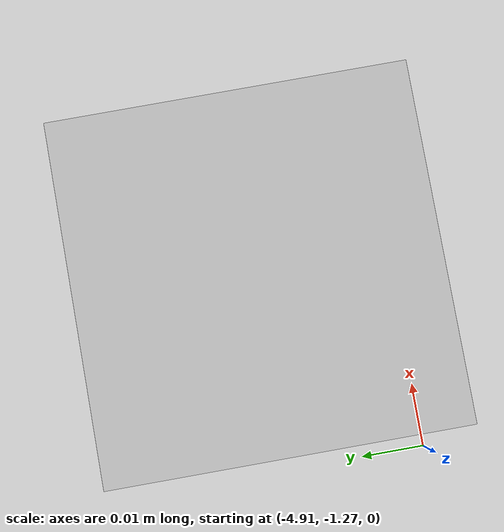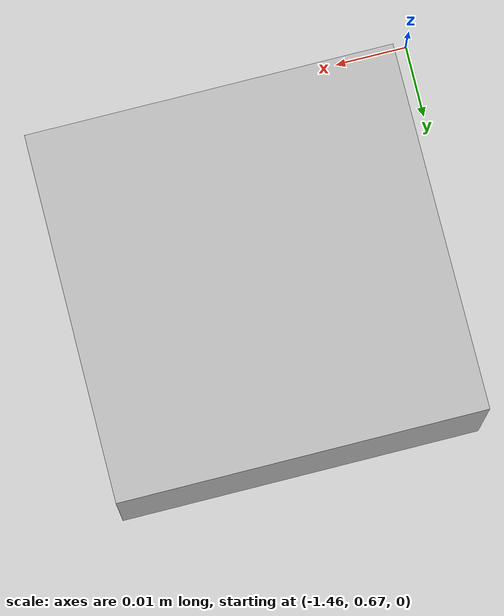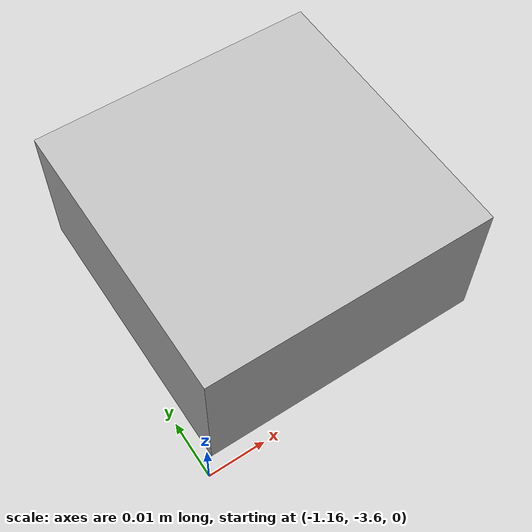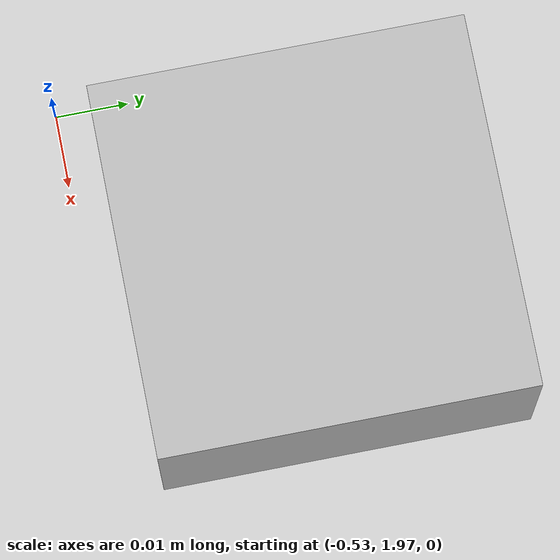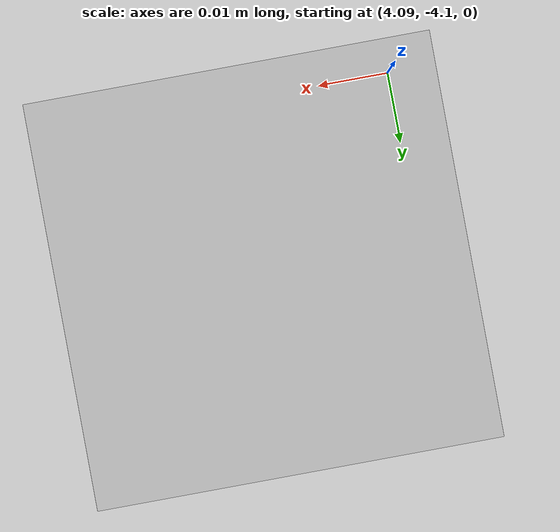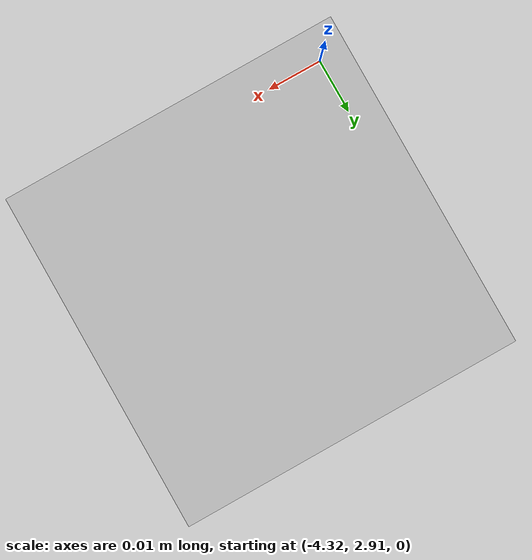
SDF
<sdf version="1.4">
 <world name="default">
  <model name="ground_plane">
   <static>1</static>
   <link name="link">
    <collision name="collision">
     <geometry><plane><normal>0 0 1</normal><size>100 100</size></plane></geometry>
     <surface><friction><ode><mu>100</mu><mu2>50</mu2></ode></friction></surface>
    </collision>
    <visual name="visual">
     <cast_shadows>0</cast_shadows>
     <geometry><plane><normal>0 0 1</normal><size>100 100</size></plane></geometry>
     <material>
      <script><uri>file://media/materials/scripts/gazebo.material</uri><name>Gazebo/Grey</name></script>
     </material>
    </visual>
    <velocity_decay><linear>0</linear><angular>0</angular></velocity_decay>
   </link>
  </model>
  <light name="sun" type="directional">
   <pose>0 0 10 0 -0 0</pose>
   <diffuse>0.8 0.8 0.8 1</diffuse>
   <specular>0.2 0.2 0.2 1</specular>
   <attenuation>
    <range>1000</range>
    <constant>0.9</constant>
    <linear>0.01</linear>
    <quadratic>0.001</quadratic>
   </attenuation>
   <direction>-0.5 0.1 -0.9</direction>
  </light>
  <plugin name="SetupWorld" filename="libgazebo_plugins.so"/>
  <physics type="ode">
   <max_step_size>0.001</max_step_size>
   <real_time_factor>1</real_time_factor>
   <real_time_update_rate>1000</real_time_update_rate>
   <gravity>0 0 -9.8</gravity>
  </physics>
  <scene><ambient>0.4 0.4 0.4 1</ambient><background>0.7 0.7 0.7 1</background><shadows>1</shadows></scene>
  <spherical_coordinates>
   <surface_model>EARTH_WGS84</surface_model>
   <latitude_deg>0</latitude_deg>
   <longitude_deg>0</longitude_deg>
   <elevation>0</elevation>
   <heading_deg>0</heading_deg>
  </spherical_coordinates>
  <model name="at0_1">
   <static>0</static>
   <link name="link">
    <inertial>
     <mass>0.1</mass>
     <inertia><ixx>4e-05</ixx><ixy>0</ixy><ixz>0</ixz><iyy>4e-05</iyy><iyz>0</iyz><izz>4e-05</izz></inertia>
    </inertial>
    <visual name="visual">
     <transparency>0.1</transparency>
     <geometry><box><size>0.05 0.05 0.05</size></box></geometry>
     <material>
      <script>
       <uri>model://at0/materials/scripts</uri>
       <uri>model://at0/materials/textures</uri>
       <name>at0/Diffuse</name>
      </script>
     </material>
    </visual>
    <collision name="collision">
     <pose>0 0 -0.0125 0 -0 0</pose>
     <geometry><box><size>0.05 0.05 0.05</size></box></geometry>
     <surface><friction><ode><mu>0.8</mu><mu2>0.7</mu2></ode></friction></surface>
    </collision>
    <velocity_decay><linear>0</linear><angular>0</angular></velocity_decay>
   </link>
   <pose>-1.4311 0.699185 -2e-06 1.8e-05 6.3e-05 1.2e-05</pose>
  </model>
  <model name="at0_3">
   <static>0</static>
   <link name="link">
    <inertial>
     <mass>0.1</mass>
     <inertia><ixx>4e-05</ixx><ixy>0</ixy><ixz>0</ixz><iyy>4e-05</iyy><iyz>0</iyz><izz>4e-05</izz></inertia>
    </inertial>
    <visual name="visual">
     <transparency>0.1</transparency>
     <geometry><box><size>0.05 0.05 0.05</size></box></geometry>
     <material>
      <script>
       <uri>model://at0/materials/scripts</uri>
       <uri>model://at0/materials/textures</uri>
       <name>at0/Diffuse</name>
      </script>
     </material>
    </visual>
    <collision name="collision">
     <pose>0 0 0 -0 0</pose>
     <geometry><box><size>0.05 0.05 0.05</size></box></geometry>
     <surface><friction><ode><mu>0.8</mu><mu2>0.7</mu2></ode></friction></surface>
    </collision>
    <velocity_decay><linear>0</linear><angular>0</angular></velocity_decay>
   </link>
   <pose>-1.50091 3.35763 -8e-06 -6.1e-05 1e-05 1e-05</pose>
  </model>
  <model name="at0_6">
   <static>0</static>
   <link name="link">
    <inertial>
     <mass>0.1</mass>
     <inertia><ixx>4e-05</ixx><ixy>0</ixy><ixz>0</ixz><iyy>4e-05</iyy><iyz>0</iyz><izz>4e-05</izz></inertia>
    </inertial>
    <visual name="visual">
     <transparency>0.1</transparency>
     <geometry><box><size>0.05 0.05 0.05</size></box></geometry>
     <material>
      <script>
       <uri>model://at0/materials/scripts</uri>
       <uri>model://at0/materials/textures</uri>
       <name>at0/Diffuse</name>
      </script>
     </material>
    </visual>
    <collision name="collision">
     <geometry><box><size>0.05 0.05 0.05</size></box></geometry>
     <surface><friction><ode><mu>0.8</mu><mu2>0.7</mu2></ode></friction></surface>
    </collision>
    <velocity_decay><linear>0</linear><angular>0</angular></velocity_decay>
   </link>
   <pose>-3.42375 1.11176 -0 0 -0 9e-06</pose>
  </model>
  <model name="at0_7">
   <static>0</static>
   <link name="link">
    <inertial>
     <mass>0.1</mass>
     <inertia><ixx>4e-05</ixx><ixy>0</ixy><ixz>0</ixz><iyy>4e-05</iyy><iyz>0</iyz><izz>4e-05</izz></inertia>
    </inertial>
    <visual name="visual">
     <transparency>0.1</transparency>
     <geometry><box><size>0.05 0.05 0.05</size></box></geometry>
     <material>
      <script>
       <uri>model://at0/materials/scripts</uri>
       <uri>model://at0/materials/textures</uri>
       <name>at0/Diffuse</name>
      </script>
     </material>
    </visual>
    <collision name="collision">
     <geometry><box><size>0.05 0.05 0.05</size></box></geometry>
     <surface><friction><ode><mu>0.8</mu><mu2>0.7</mu2></ode></friction></surface>
    </collision>
    <velocity_decay><linear>0</linear><angular>0</angular></velocity_decay>
   </link>
   <pose>3.87806 -1.02691 -2e-06 6.1e-05 -1e-05 1e-05</pose>
  </model>
  <model name="at0_8">
   <static>0</static>
   <link name="link">
    <inertial>
     <mass>0.1</mass>
     <inertia><ixx>4e-05</ixx><ixy>0</ixy><ixz>0</ixz><iyy>4e-05</iyy><iyz>0</iyz><izz>4e-05</izz></inertia>
    </inertial>
    <visual name="visual">
     <transparency>0.1</transparency>
     <geometry><box><size>0.05 0.05 0.05</size></box></geometry>
     <material>
      <script>
       <uri>model://at0/materials/scripts</uri>
       <uri>model://at0/materials/textures</uri>
       <name>at0/Diffuse</name>
      </script>
     </material>
    </visual>
    <collision name="collision">
     <geometry><box><size>0.05 0.05 0.05</size></box></geometry>
     <surface><friction><ode><mu>0.8</mu><mu2>0.7</mu2></ode></friction></surface>
    </collision>
    <velocity_decay><linear>0</linear><angular>0</angular></velocity_decay>
   </link>
   <pose>-1.13303 -3.57246 -2e-06 6.1e-05 -1e-05 1e-05</pose>
  </model>
  <model name="at0_10">
   <static>0</static>
   <link name="link">
    <inertial>
     <mass>0.1</mass>
     <inertia><ixx>4e-05</ixx><ixy>0</ixy><ixz>0</ixz><iyy>4e-05</iyy><iyz>0</iyz><izz>4e-05</izz></inertia>
    </inertial>
    <visual name="visual">
     <transparency>0.1</transparency>
     <geometry><box><size>0.05 0.05 0.05</size></box></geometry>
     <material>
      <script>
       <uri>model://at0/materials/scripts</uri>
       <uri>model://at0/materials/textures</uri>
       <name>at0/Diffuse</name>
      </script>
     </material>
    </visual>
    <collision name="collision">
     <geometry><box><size>0.05 0.05 0.05</size></box></geometry>
     <surface><friction><ode><mu>0.8</mu><mu2>0.7</mu2></ode></friction></surface>
    </collision>
    <velocity_decay><linear>0</linear><angular>0</angular></velocity_decay>
   </link>
   <pose>-4.29334 2.9364 -2e-06 6.1e-05 -1e-05 1e-05</pose>
  </model>
  <model name="at0_11">
   <static>0</static>
   <link name="link">
    <inertial>
     <mass>0.1</mass>
     <inertia><ixx>4e-05</ixx><ixy>0</ixy><ixz>0</ixz><iyy>4e-05</iyy><iyz>0</iyz><izz>4e-05</izz></inertia>
    </inertial>
    <visual name="visual">
     <transparency>0.1</transparency>
     <geometry><box><size>0.05 0.05 0.05</size></box></geometry>
     <material>
      <script>
       <uri>model://at0/materials/scripts</uri>
       <uri>model://at0/materials/textures</uri>
       <name>at0/Diffuse</name>
      </script>
     </material>
    </visual>
    <collision name="collision">
     <geometry><box><size>0.05 0.05 0.05</size></box></geometry>
     <surface><friction><ode><mu>0.8</mu><mu2>0.7</mu2></ode></friction></surface>
    </collision>
    <velocity_decay><linear>0</linear><angular>0</angular></velocity_decay>
   </link>
   <pose>-0.501759 2 -8e-06 -6.1e-05 1e-05 1e-05</pose>
  </model>
  <model name="at0_16">
   <static>0</static>
   <link name="link">
    <inertial>
     <mass>0.1</mass>
     <inertia><ixx>4e-05</ixx><ixy>0</ixy><ixz>0</ixz><iyy>4e-05</iyy><iyz>0</iyz><izz>4e-05</izz></inertia>
    </inertial>
    <visual name="visual">
     <transparency>0.1</transparency>
     <geometry><box><size>0.05 0.05 0.05</size></box></geometry>
     <material>
      <script>
       <uri>model://at0/materials/scripts</uri>
       <uri>model://at0/materials/textures</uri>
       <name>at0/Diffuse</name>
      </script>
     </material>
    </visual>
    <collision name="collision">
     <geometry><box><size>0.05 0.05 0.05</size></box></geometry>
     <surface><friction><ode><mu>0.8</mu><mu2>0.7</mu2></ode></friction></surface>
    </collision>
    <velocity_decay><linear>0</linear><angular>0</angular></velocity_decay>
   </link>
   <pose>1 2.49709 -8e-06 -6.1e-05 1e-05 1e-05</pose>
  </model>
  <model name="at0_21">
   <static>0</static>
   <link name="link">
    <inertial>
     <mass>0.1</mass>
     <inertia><ixx>4e-05</ixx><ixy>0</ixy><ixz>0</ixz><iyy>4e-05</iyy><iyz>0</iyz><izz>4e-05</izz></inertia>
    </inertial>
    <visual name="visual">
     <transparency>0.1</transparency>
     <geometry><box><size>0.05 0.05 0.05</size></box></geometry>
     <material>
      <script>
       <uri>model://at0/materials/scripts</uri>
       <uri>model://at0/materials/textures</uri>
       <name>at0/Diffuse</name>
      </script>
     </material>
    </visual>
    <collision name="collision">
     <geometry><box><size>0.05 0.05 0.05</size></box></geometry>
     <surface><friction><ode><mu>0.8</mu><mu2>0.7</mu2></ode></friction></surface>
    </collision>
    <velocity_decay><linear>0</linear><angular>0</angular></velocity_decay>
   </link>
   <pose>2.53867 3.43605 -2e-06 6.1e-05 -1e-05 1e-05</pose>
  </model>
  <model name="at0_24">
   <static>0</static>
   <link name="link">
    <inertial>
     <mass>0.1</mass>
     <inertia><ixx>4e-05</ixx><ixy>0</ixy><ixz>0</ixz><iyy>4e-05</iyy><iyz>0</iyz><izz>4e-05</izz></inertia>
    </inertial>
    <visual name="visual">
     <transparency>0.1</transparency>
     <geometry><box><size>0.05 0.05 0.05</size></box></geometry>
     <material>
      <script>
       <uri>model://at0/materials/scripts</uri>
       <uri>model://at0/materials/textures</uri>
       <name>at0/Diffuse</name>
      </script>
     </material>
    </visual>
    <collision name="collision">
     <geometry><box><size>0.05 0.05 0.05</size></box></geometry>
     <surface><friction><ode><mu>0.8</mu><mu2>0.7</mu2></ode></friction></surface>
    </collision>
    <velocity_decay><linear>0</linear><angular>0</angular></velocity_decay>
   </link>
   <pose>4.11245 -4.07565 -0 0 -0 9e-06</pose>
  </model>
  <model name="at0_25">
   <static>0</static>
   <link name="link">
    <inertial>
     <mass>0.1</mass>
     <inertia><ixx>4e-05</ixx><ixy>0</ixy><ixz>0</ixz><iyy>4e-05</iyy><iyz>0</iyz><izz>4e-05</izz></inertia>
    </inertial>
    <visual name="visual">
     <transparency>0.1</transparency>
     <geometry><box><size>0.05 0.05 0.05</size></box></geometry>
     <material>
      <script>
       <uri>model://at0/materials/scripts</uri>
       <uri>model://at0/materials/textures</uri>
       <name>at0/Diffuse</name>
      </script>
     </material>
    </visual>
    <collision name="collision">
     <geometry><box><size>0.05 0.05 0.05</size></box></geometry>
     <surface><friction><ode><mu>0.8</mu><mu2>0.7</mu2></ode></friction></surface>
    </collision>
    <velocity_decay><linear>0</linear><angular>0</angular></velocity_decay>
   </link>
   <pose>-4.88002 -1.24838 -2e-06 6.1e-05 -1e-05 1e-05</pose>
  </model>
 </world>
</sdf>
